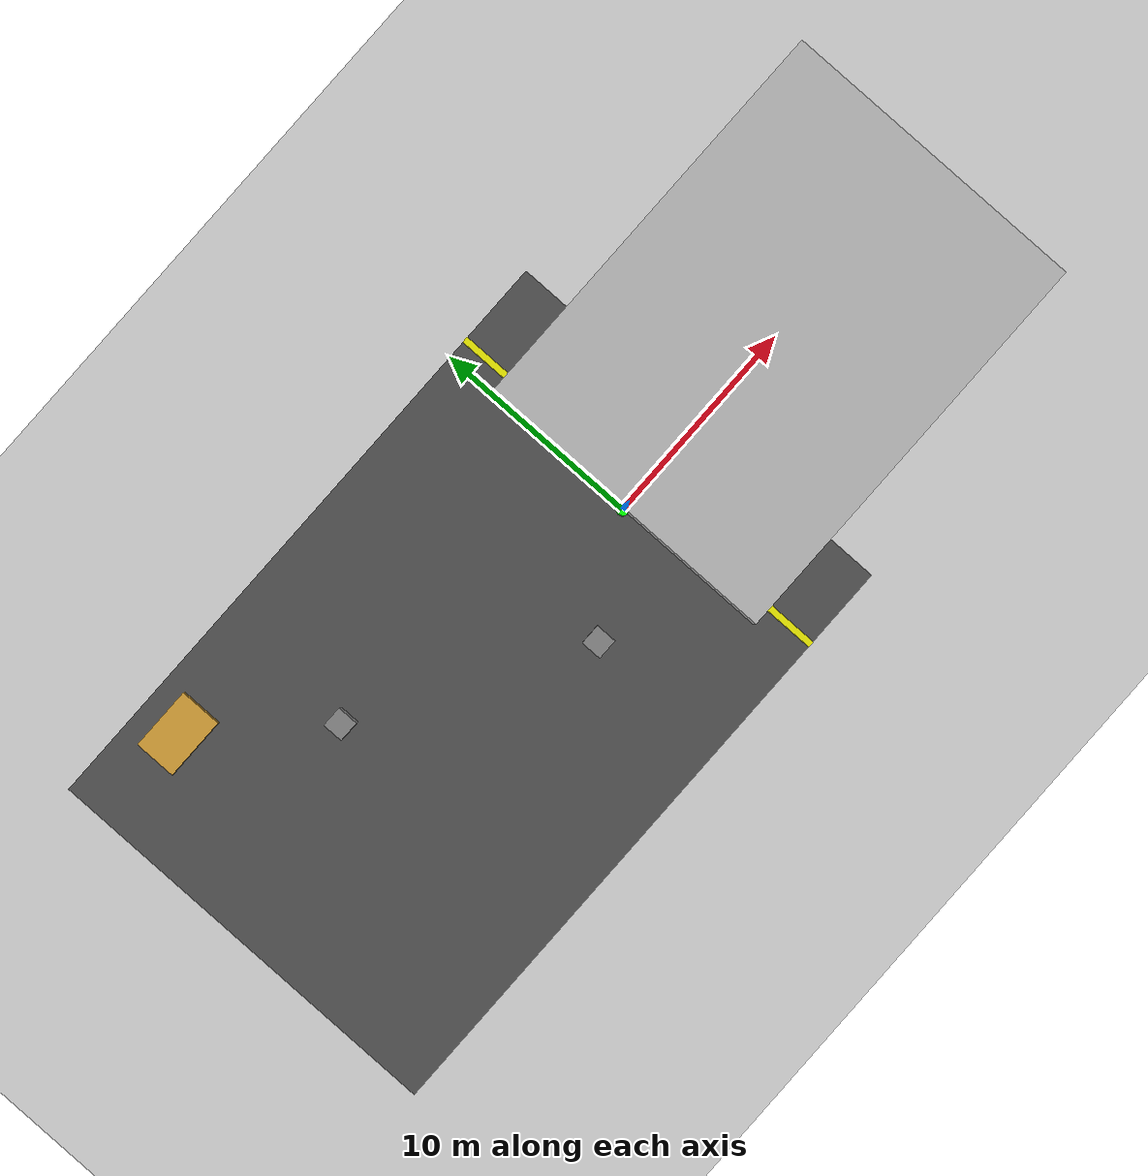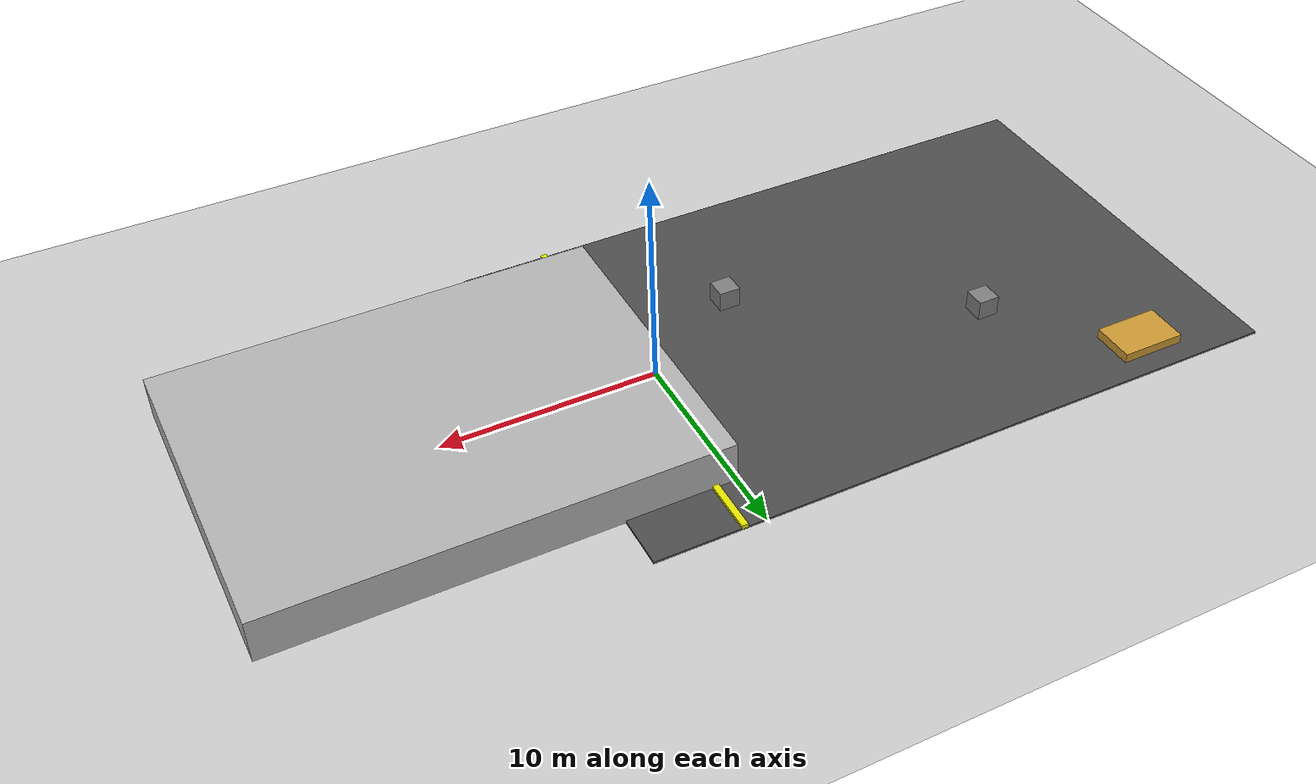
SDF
<?xml version="1.0"?>
<sdf version="1.6">
  <world name="stopandshop_brigham">

    <!-- Physics settings -->
    <physics type="ode">
      <max_step_size>0.001</max_step_size>
      <real_time_factor>1</real_time_factor>
      <real_time_update_rate>1000</real_time_update_rate>
    </physics>

    <!-- Lighting -->
    <include>
      <uri>model://sun</uri>
    </include>

    <!-- Ground plane -->
    <include>
      <uri>model://ground_plane</uri>
    </include>

    <!-- Ambient lighting -->
    <light name="ambient_light" type="directional">
      <cast_shadows>true</cast_shadows>
      <pose>0 0 10 0 0 0</pose>
      <diffuse>0.8 0.8 0.8 1</diffuse>
      <specular>0.2 0.2 0.2 1</specular>
      <attenuation>
        <range>1000</range>
        <constant>0.9</constant>
        <linear>0.01</linear>
        <quadratic>0.001</quadratic>
      </attenuation>
      <direction>-0.5 0.1 -0.9</direction>
    </light>

    <!-- Store Building -->
    <model name="store_building">
      <static>true</static>
      <pose>10 0 0 0 0 0</pose>
      <link name="link">
        <collision name="collision">
          <geometry>
            <box>
              <size>20 15 4</size>
            </box>
          </geometry>
        </collision>
        <visual name="visual">
          <geometry>
            <box>
              <size>20 15 4</size>
            </box>
          </geometry>
          <material>
            <ambient>0.7 0.7 0.7 1</ambient>
            <diffuse>0.7 0.7 0.7 1</diffuse>
          </material>
        </visual>
      </link>
    </model>

    <!-- Parking Lot -->
    <model name="parking_lot">
      <static>true</static>
      <pose>-10 0 0.01 0 0 0</pose>
      <link name="link">
        <collision name="collision">
          <geometry>
            <box>
              <size>30 20 0.1</size>
            </box>
          </geometry>
        </collision>
        <visual name="visual">
          <geometry>
            <box>
              <size>30 20 0.1</size>
            </box>
          </geometry>
          <material>
            <ambient>0.3 0.3 0.3 1</ambient>
            <diffuse>0.3 0.3 0.3 1</diffuse>
          </material>
        </visual>
      </link>
    </model>

    <!-- Parking Lines (lane markings) -->
    <model name="parking_line_1">
      <static>true</static>
      <pose>-10 5 0.02 0 0 0</pose>
      <link name="link">
        <visual name="visual">
          <geometry>
            <box>
              <size>30 0.1 0.01</size>
            </box>
          </geometry>
          <material>
            <ambient>1 1 1 1</ambient>
            <diffuse>1 1 1 1</diffuse>
          </material>
        </visual>
      </link>
    </model>

    <model name="parking_line_2">
      <static>true</static>
      <pose>-10 0 0.02 0 0 0</pose>
      <link name="link">
        <visual name="visual">
          <geometry>
            <box>
              <size>30 0.1 0.01</size>
            </box>
          </geometry>
          <material>
            <ambient>1 1 1 1</ambient>
            <diffuse>1 1 1 1</diffuse>
          </material>
        </visual>
      </link>
    </model>

    <model name="parking_line_3">
      <static>true</static>
      <pose>-10 -5 0.02 0 0 0</pose>
      <link name="link">
        <visual name="visual">
          <geometry>
            <box>
              <size>30 0.1 0.01</size>
            </box>
          </geometry>
          <material>
            <ambient>1 1 1 1</ambient>
            <diffuse>1 1 1 1</diffuse>
          </material>
        </visual>
      </link>
    </model>

    <!-- Cart Return Area -->
    <model name="cart_return">
      <static>true</static>
      <pose>-20 8 0 0 0 0</pose>
      <link name="link">
        <collision name="collision">
          <geometry>
            <box>
              <size>3 2 1</size>
            </box>
          </geometry>
        </collision>
        <visual name="visual">
          <geometry>
            <box>
              <size>3 2 1</size>
            </box>
          </geometry>
          <material>
            <ambient>0.8 0.6 0.2 1</ambient>
            <diffuse>0.8 0.6 0.2 1</diffuse>
          </material>
        </visual>
      </link>
    </model>

    <!-- Entrance -->
    <model name="entrance_marker">
      <static>true</static>
      <pose>0 0 0.5 0 0 0</pose>
      <link name="link">
        <visual name="visual">
          <geometry>
            <cylinder>
              <radius>0.3</radius>
              <length>1</length>
            </cylinder>
          </geometry>
          <material>
            <ambient>0 1 0 1</ambient>
            <diffuse>0 1 0 1</diffuse>
          </material>
        </visual>
      </link>
    </model>

    <!-- Obstacles in parking lot -->
    <model name="obstacle_1">
      <static>true</static>
      <pose>-15 3 0.5 0 0 0</pose>
      <link name="link">
        <collision name="collision">
          <geometry>
            <box>
              <size>1 1 1</size>
            </box>
          </geometry>
        </collision>
        <visual name="visual">
          <geometry>
            <box>
              <size>1 1 1</size>
            </box>
          </geometry>
          <material>
            <ambient>0.5 0.5 0.5 1</ambient>
            <diffuse>0.5 0.5 0.5 1</diffuse>
          </material>
        </visual>
      </link>
    </model>

    <model name="obstacle_2">
      <static>true</static>
      <pose>-5 -3 0.5 0 0 0</pose>
      <link name="link">
        <collision name="collision">
          <geometry>
            <box>
              <size>1 1 1</size>
            </box>
          </geometry>
        </collision>
        <visual name="visual">
          <geometry>
            <box>
              <size>1 1 1</size>
            </box>
          </geometry>
          <material>
            <ambient>0.5 0.5 0.5 1</ambient>
            <diffuse>0.5 0.5 0.5 1</diffuse>
          </material>
        </visual>
      </link>
    </model>

    <!-- Curb -->
    <model name="curb">
      <static>true</static>
      <pose>1 0 0.1 0 0 0</pose>
      <link name="link">
        <collision name="collision">
          <geometry>
            <box>
              <size>0.3 20 0.2</size>
            </box>
          </geometry>
        </collision>
        <visual name="visual">
          <geometry>
            <box>
              <size>0.3 20 0.2</size>
            </box>
          </geometry>
          <material>
            <ambient>0.9 0.9 0 1</ambient>
            <diffuse>0.9 0.9 0 1</diffuse>
          </material>
        </visual>
      </link>
    </model>

    <!-- Scene settings -->
    <scene>
      <ambient>0.4 0.4 0.4 1</ambient>
      <background>0.7 0.7 1 1</background>
      <shadows>true</shadows>
    </scene>

    <!-- GPS reference coordinates (Brigham area) -->
    <spherical_coordinates>
      <surface_model>EARTH_WGS84</surface_model>
      <latitude_deg>42.3601</latitude_deg>
      <longitude_deg>-71.0589</longitude_deg>
      <elevation>20.0</elevation>
    </spherical_coordinates>

  </world>
</sdf>
